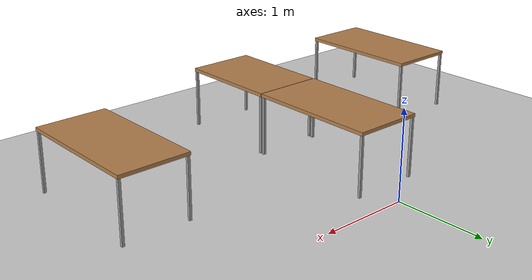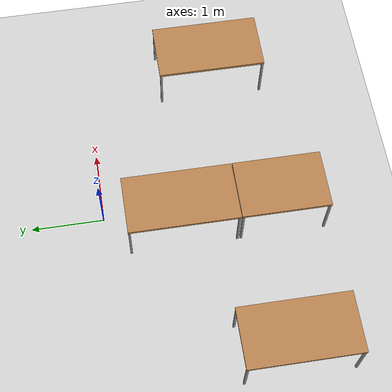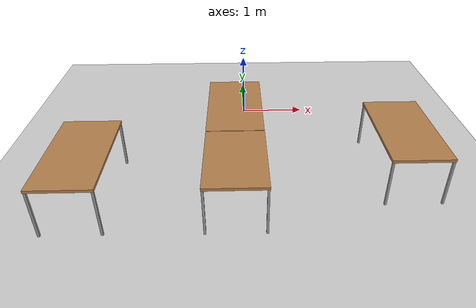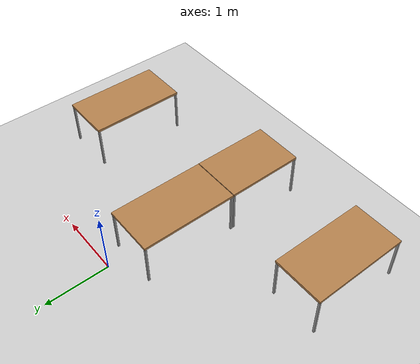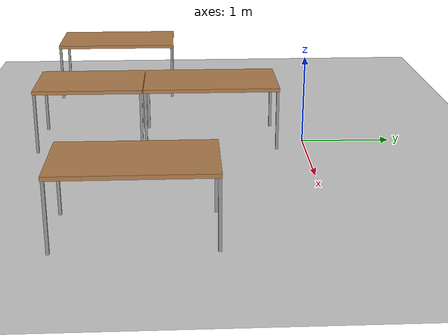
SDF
<sdf version="1.7">
 <world name="default">
  <model name="ground_plane">
   <static>1</static>
   <link name="link">
    <collision name="collision">
     <geometry><plane><normal>0 0 1</normal><size>100 100</size></plane></geometry>
     <surface>
      <contact><collide_bitmask>65535</collide_bitmask></contact>
      <friction><ode><mu>100</mu><mu2>50</mu2></ode></friction>
     </surface>
    </collision>
    <visual name="visual">
     <cast_shadows>0</cast_shadows>
     <geometry><plane><normal>0 0 1</normal><size>100 100</size></plane></geometry>
     <material>
      <script><uri>file://media/materials/scripts/gazebo.material</uri><name>Gazebo/Grey</name></script>
     </material>
    </visual>
   </link>
  </model>
  <model name="table_long">
   <link name="link">
    <inertial>
     <mass>1</mass>
     <inertia><ixx>1</ixx><ixy>0</ixy><ixz>0</ixz><iyy>1</iyy><iyz>0</iyz><izz>1</izz></inertia>
    </inertial>
    <visual name="front_left_leg">
     <pose>0.73 0.38 0.35 0 -0 0</pose>
     <geometry><box><size>0.03 0.03 0.7</size></box></geometry>
     <material>
      <script><uri>file://media/materials/scripts/gazebo.material</uri><name>Gazebo/Grey</name></script>
      <shader type="pixel"><normal_map>__default__</normal_map></shader>
      <ambient>0.3 0.3 0.3 1</ambient>
      <diffuse>0.7 0.7 0.7 1</diffuse>
      <specular>0.01 0.01 0.01 1</specular>
      <emissive>0 0 0 1</emissive>
     </material>
    </visual>
    <visual name="front_right_leg">
     <pose>0.73 -0.38 0.35 0 -0 0</pose>
     <geometry><box><size>0.03 0.03 0.7</size></box></geometry>
     <material>
      <script><uri>file://media/materials/scripts/gazebo.material</uri><name>Gazebo/Grey</name></script>
      <shader type="pixel"><normal_map>__default__</normal_map></shader>
      <ambient>0.3 0.3 0.3 1</ambient>
      <diffuse>0.7 0.7 0.7 1</diffuse>
      <specular>0.01 0.01 0.01 1</specular>
      <emissive>0 0 0 1</emissive>
     </material>
    </visual>
    <visual name="visual1">
     <pose>0 0 0.7 0 -0 0</pose>
     <geometry><box><size>1.5 0.8 0.04</size></box></geometry>
     <material>
      <script><uri>file://media/materials/scripts/gazebo.material</uri><name>Gazebo/Wood</name></script>
      <shader type="pixel"><normal_map>__default__</normal_map></shader>
      <ambient>1 1 1 1</ambient>
      <diffuse>1 1 1 1</diffuse>
      <specular>0.2 0.2 0.2 1</specular>
      <emissive>0 0 0 1</emissive>
     </material>
    </visual>
    <visual name="back_right_leg">
     <pose>-0.73 -0.38 0.35 0 -0 0</pose>
     <geometry><box><size>0.03 0.03 0.7</size></box></geometry>
     <material>
      <script><uri>file://media/materials/scripts/gazebo.material</uri><name>Gazebo/Grey</name></script>
      <shader type="pixel"><normal_map>__default__</normal_map></shader>
      <ambient>0.3 0.3 0.3 1</ambient>
      <diffuse>0.7 0.7 0.7 1</diffuse>
      <specular>0.01 0.01 0.01 1</specular>
      <emissive>0 0 0 1</emissive>
     </material>
    </visual>
    <visual name="back_left_leg">
     <pose>-0.73 0.38 0.35 0 -0 0</pose>
     <geometry><box><size>0.03 0.03 0.7</size></box></geometry>
     <material>
      <script><uri>file://media/materials/scripts/gazebo.material</uri><name>Gazebo/Grey</name></script>
      <shader type="pixel"><normal_map>__default__</normal_map></shader>
      <ambient>0.3 0.3 0.3 1</ambient>
      <diffuse>0.7 0.7 0.7 1</diffuse>
      <specular>0.01 0.01 0.01 1</specular>
      <emissive>0 0 0 1</emissive>
     </material>
    </visual>
    <collision name="front_right_leg">
     <pose>0.73 -0.38 0.35 0 -0 0</pose>
     <geometry><box><size>0.03 0.03 0.7</size></box></geometry>
     <surface>
      <friction>
       <ode><mu>1</mu><mu2>1</mu2><fdir1>0 0 0</fdir1><slip1>0</slip1><slip2>0</slip2></ode>
       <torsional>
        <coefficient>1</coefficient>
        <patch_radius>0</patch_radius>
        <surface_radius>0</surface_radius>
        <use_patch_radius>1</use_patch_radius>
        <ode><slip>0</slip></ode>
       </torsional>
      </friction>
      <bounce><restitution_coefficient>0</restitution_coefficient><threshold>1e+06</threshold></bounce>
      <contact>
       <collide_without_contact>0</collide_without_contact>
       <collide_without_contact_bitmask>1</collide_without_contact_bitmask>
       <collide_bitmask>1</collide_bitmask>
       <ode>
        <soft_cfm>0</soft_cfm>
        <soft_erp>0.2</soft_erp>
        <kp>1e+13</kp>
        <kd>1</kd>
        <max_vel>0.01</max_vel>
        <min_depth>0</min_depth>
       </ode>
       <bullet>
        <split_impulse>1</split_impulse>
        <split_impulse_penetration_threshold>-0.01</split_impulse_penetration_threshold>
        <soft_cfm>0</soft_cfm>
        <soft_erp>0.2</soft_erp>
        <kp>1e+13</kp>
        <kd>1</kd>
       </bullet>
      </contact>
     </surface>
    </collision>
    <collision name="front_left_leg">
     <pose>0.73 0.38 0.35 0 -0 0</pose>
     <geometry><box><size>0.03 0.03 0.699999</size></box></geometry>
     <surface>
      <friction>
       <ode><mu>1</mu><mu2>1</mu2><fdir1>0 0 0</fdir1><slip1>0</slip1><slip2>0</slip2></ode>
       <torsional>
        <coefficient>1</coefficient>
        <patch_radius>0</patch_radius>
        <surface_radius>0</surface_radius>
        <use_patch_radius>1</use_patch_radius>
        <ode><slip>0</slip></ode>
       </torsional>
      </friction>
      <bounce><restitution_coefficient>0</restitution_coefficient><threshold>1e+06</threshold></bounce>
      <contact>
       <collide_without_contact>0</collide_without_contact>
       <collide_without_contact_bitmask>1</collide_without_contact_bitmask>
       <collide_bitmask>1</collide_bitmask>
       <ode>
        <soft_cfm>0</soft_cfm>
        <soft_erp>0.2</soft_erp>
        <kp>1e+13</kp>
        <kd>1</kd>
        <max_vel>0.01</max_vel>
        <min_depth>0</min_depth>
       </ode>
       <bullet>
        <split_impulse>1</split_impulse>
        <split_impulse_penetration_threshold>-0.01</split_impulse_penetration_threshold>
        <soft_cfm>0</soft_cfm>
        <soft_erp>0.2</soft_erp>
        <kp>1e+13</kp>
        <kd>1</kd>
       </bullet>
      </contact>
     </surface>
    </collision>
    <collision name="back_right_leg">
     <pose>-0.73 -0.38 0.35 0 -0 0</pose>
     <geometry><box><size>0.03 0.03 0.7</size></box></geometry>
     <surface>
      <friction>
       <ode><mu>1</mu><mu2>1</mu2><fdir1>0 0 0</fdir1><slip1>0</slip1><slip2>0</slip2></ode>
       <torsional>
        <coefficient>1</coefficient>
        <patch_radius>0</patch_radius>
        <surface_radius>0</surface_radius>
        <use_patch_radius>1</use_patch_radius>
        <ode><slip>0</slip></ode>
       </torsional>
      </friction>
      <bounce><restitution_coefficient>0</restitution_coefficient><threshold>1e+06</threshold></bounce>
      <contact>
       <collide_without_contact>0</collide_without_contact>
       <collide_without_contact_bitmask>1</collide_without_contact_bitmask>
       <collide_bitmask>1</collide_bitmask>
       <ode>
        <soft_cfm>0</soft_cfm>
        <soft_erp>0.2</soft_erp>
        <kp>1e+13</kp>
        <kd>1</kd>
        <max_vel>0.01</max_vel>
        <min_depth>0</min_depth>
       </ode>
       <bullet>
        <split_impulse>1</split_impulse>
        <split_impulse_penetration_threshold>-0.01</split_impulse_penetration_threshold>
        <soft_cfm>0</soft_cfm>
        <soft_erp>0.2</soft_erp>
        <kp>1e+13</kp>
        <kd>1</kd>
       </bullet>
      </contact>
     </surface>
    </collision>
    <collision name="surface">
     <pose>0 0 0.7 0 -0 0</pose>
     <geometry><box><size>1.5 0.8 0.04</size></box></geometry>
     <surface>
      <friction>
       <ode><mu>0.6</mu><mu2>0.6</mu2><fdir1>0 0 0</fdir1><slip1>0</slip1><slip2>0</slip2></ode>
       <torsional>
        <coefficient>1</coefficient>
        <patch_radius>0</patch_radius>
        <surface_radius>0</surface_radius>
        <use_patch_radius>1</use_patch_radius>
        <ode><slip>0</slip></ode>
       </torsional>
      </friction>
      <bounce><restitution_coefficient>0</restitution_coefficient><threshold>1e+06</threshold></bounce>
      <contact>
       <collide_without_contact>0</collide_without_contact>
       <collide_without_contact_bitmask>1</collide_without_contact_bitmask>
       <collide_bitmask>1</collide_bitmask>
       <ode>
        <soft_cfm>0</soft_cfm>
        <soft_erp>0.2</soft_erp>
        <kp>1e+13</kp>
        <kd>1</kd>
        <max_vel>0.01</max_vel>
        <min_depth>0</min_depth>
       </ode>
       <bullet>
        <split_impulse>1</split_impulse>
        <split_impulse_penetration_threshold>-0.01</split_impulse_penetration_threshold>
        <soft_cfm>0</soft_cfm>
        <soft_erp>0.2</soft_erp>
        <kp>1e+13</kp>
        <kd>1</kd>
       </bullet>
      </contact>
     </surface>
    </collision>
    <collision name="back_left_leg">
     <pose>-0.73 0.38 0.35 0 -0 0</pose>
     <geometry><box><size>0.03 0.03 0.7</size></box></geometry>
     <surface>
      <friction>
       <ode><mu>1</mu><mu2>1</mu2><fdir1>0 0 0</fdir1><slip1>0</slip1><slip2>0</slip2></ode>
       <torsional>
        <coefficient>1</coefficient>
        <patch_radius>0</patch_radius>
        <surface_radius>0</surface_radius>
        <use_patch_radius>1</use_patch_radius>
        <ode><slip>0</slip></ode>
       </torsional>
      </friction>
      <bounce><restitution_coefficient>0</restitution_coefficient><threshold>1e+06</threshold></bounce>
      <contact>
       <collide_without_contact>0</collide_without_contact>
       <collide_without_contact_bitmask>1</collide_without_contact_bitmask>
       <collide_bitmask>1</collide_bitmask>
       <ode>
        <soft_cfm>0</soft_cfm>
        <soft_erp>0.2</soft_erp>
        <kp>1e+13</kp>
        <kd>1</kd>
        <max_vel>0.01</max_vel>
        <min_depth>0</min_depth>
       </ode>
       <bullet>
        <split_impulse>1</split_impulse>
        <split_impulse_penetration_threshold>-0.01</split_impulse_penetration_threshold>
        <soft_cfm>0</soft_cfm>
        <soft_erp>0.2</soft_erp>
        <kp>1e+13</kp>
        <kd>1</kd>
       </bullet>
      </contact>
     </surface>
    </collision>
   </link>
   <static>1</static>
   <pose>-2.14635 -2.2433 0 0 -0 1.57</pose>
  </model>
  <model name="table_long_clone">
   <link name="link">
    <inertial>
     <mass>1</mass>
     <inertia><ixx>1</ixx><ixy>0</ixy><ixz>0</ixz><iyy>1</iyy><iyz>0</iyz><izz>1</izz></inertia>
    </inertial>
    <visual name="front_left_leg">
     <pose>0.73 0.38 0.35 0 -0 0</pose>
     <geometry><box><size>0.03 0.03 0.7</size></box></geometry>
     <material>
      <script><uri>file://media/materials/scripts/gazebo.material</uri><name>Gazebo/Grey</name></script>
      <shader type="pixel"><normal_map>__default__</normal_map></shader>
      <ambient>0.3 0.3 0.3 1</ambient>
      <diffuse>0.7 0.7 0.7 1</diffuse>
      <specular>0.01 0.01 0.01 1</specular>
      <emissive>0 0 0 1</emissive>
     </material>
    </visual>
    <visual name="front_right_leg">
     <pose>0.73 -0.38 0.35 0 -0 0</pose>
     <geometry><box><size>0.03 0.03 0.7</size></box></geometry>
     <material>
      <script><uri>file://media/materials/scripts/gazebo.material</uri><name>Gazebo/Grey</name></script>
      <shader type="pixel"><normal_map>__default__</normal_map></shader>
      <ambient>0.3 0.3 0.3 1</ambient>
      <diffuse>0.7 0.7 0.7 1</diffuse>
      <specular>0.01 0.01 0.01 1</specular>
      <emissive>0 0 0 1</emissive>
     </material>
    </visual>
    <visual name="visual1">
     <pose>0 0 0.7 0 -0 0</pose>
     <geometry><box><size>1.5 0.8 0.04</size></box></geometry>
     <material>
      <script><uri>file://media/materials/scripts/gazebo.material</uri><name>Gazebo/Wood</name></script>
      <shader type="pixel"><normal_map>__default__</normal_map></shader>
      <ambient>1 1 1 1</ambient>
      <diffuse>1 1 1 1</diffuse>
      <specular>0.2 0.2 0.2 1</specular>
      <emissive>0 0 0 1</emissive>
     </material>
    </visual>
    <visual name="back_right_leg">
     <pose>-0.73 -0.38 0.35 0 -0 0</pose>
     <geometry><box><size>0.03 0.03 0.7</size></box></geometry>
     <material>
      <script><uri>file://media/materials/scripts/gazebo.material</uri><name>Gazebo/Grey</name></script>
      <shader type="pixel"><normal_map>__default__</normal_map></shader>
      <ambient>0.3 0.3 0.3 1</ambient>
      <diffuse>0.7 0.7 0.7 1</diffuse>
      <specular>0.01 0.01 0.01 1</specular>
      <emissive>0 0 0 1</emissive>
     </material>
    </visual>
    <visual name="back_left_leg">
     <pose>-0.73 0.38 0.35 0 -0 0</pose>
     <geometry><box><size>0.03 0.03 0.7</size></box></geometry>
     <material>
      <script><uri>file://media/materials/scripts/gazebo.material</uri><name>Gazebo/Grey</name></script>
      <shader type="pixel"><normal_map>__default__</normal_map></shader>
      <ambient>0.3 0.3 0.3 1</ambient>
      <diffuse>0.7 0.7 0.7 1</diffuse>
      <specular>0.01 0.01 0.01 1</specular>
      <emissive>0 0 0 1</emissive>
     </material>
    </visual>
    <collision name="front_right_leg">
     <pose>0.73 -0.38 0.35 0 -0 0</pose>
     <geometry><box><size>0.03 0.03 0.7</size></box></geometry>
     <surface>
      <friction>
       <ode><mu>1</mu><mu2>1</mu2><fdir1>0 0 0</fdir1><slip1>0</slip1><slip2>0</slip2></ode>
       <torsional>
        <coefficient>1</coefficient>
        <patch_radius>0</patch_radius>
        <surface_radius>0</surface_radius>
        <use_patch_radius>1</use_patch_radius>
        <ode><slip>0</slip></ode>
       </torsional>
      </friction>
      <bounce><restitution_coefficient>0</restitution_coefficient><threshold>1e+06</threshold></bounce>
      <contact>
       <collide_without_contact>0</collide_without_contact>
       <collide_without_contact_bitmask>1</collide_without_contact_bitmask>
       <collide_bitmask>1</collide_bitmask>
       <ode>
        <soft_cfm>0</soft_cfm>
        <soft_erp>0.2</soft_erp>
        <kp>1e+13</kp>
        <kd>1</kd>
        <max_vel>0.01</max_vel>
        <min_depth>0</min_depth>
       </ode>
       <bullet>
        <split_impulse>1</split_impulse>
        <split_impulse_penetration_threshold>-0.01</split_impulse_penetration_threshold>
        <soft_cfm>0</soft_cfm>
        <soft_erp>0.2</soft_erp>
        <kp>1e+13</kp>
        <kd>1</kd>
       </bullet>
      </contact>
     </surface>
    </collision>
    <collision name="front_left_leg">
     <pose>0.73 0.38 0.35 0 -0 0</pose>
     <geometry><box><size>0.03 0.03 0.699999</size></box></geometry>
     <surface>
      <friction>
       <ode><mu>1</mu><mu2>1</mu2><fdir1>0 0 0</fdir1><slip1>0</slip1><slip2>0</slip2></ode>
       <torsional>
        <coefficient>1</coefficient>
        <patch_radius>0</patch_radius>
        <surface_radius>0</surface_radius>
        <use_patch_radius>1</use_patch_radius>
        <ode><slip>0</slip></ode>
       </torsional>
      </friction>
      <bounce><restitution_coefficient>0</restitution_coefficient><threshold>1e+06</threshold></bounce>
      <contact>
       <collide_without_contact>0</collide_without_contact>
       <collide_without_contact_bitmask>1</collide_without_contact_bitmask>
       <collide_bitmask>1</collide_bitmask>
       <ode>
        <soft_cfm>0</soft_cfm>
        <soft_erp>0.2</soft_erp>
        <kp>1e+13</kp>
        <kd>1</kd>
        <max_vel>0.01</max_vel>
        <min_depth>0</min_depth>
       </ode>
       <bullet>
        <split_impulse>1</split_impulse>
        <split_impulse_penetration_threshold>-0.01</split_impulse_penetration_threshold>
        <soft_cfm>0</soft_cfm>
        <soft_erp>0.2</soft_erp>
        <kp>1e+13</kp>
        <kd>1</kd>
       </bullet>
      </contact>
     </surface>
    </collision>
    <collision name="back_right_leg">
     <pose>-0.73 -0.38 0.35 0 -0 0</pose>
     <geometry><box><size>0.03 0.03 0.7</size></box></geometry>
     <surface>
      <friction>
       <ode><mu>1</mu><mu2>1</mu2><fdir1>0 0 0</fdir1><slip1>0</slip1><slip2>0</slip2></ode>
       <torsional>
        <coefficient>1</coefficient>
        <patch_radius>0</patch_radius>
        <surface_radius>0</surface_radius>
        <use_patch_radius>1</use_patch_radius>
        <ode><slip>0</slip></ode>
       </torsional>
      </friction>
      <bounce><restitution_coefficient>0</restitution_coefficient><threshold>1e+06</threshold></bounce>
      <contact>
       <collide_without_contact>0</collide_without_contact>
       <collide_without_contact_bitmask>1</collide_without_contact_bitmask>
       <collide_bitmask>1</collide_bitmask>
       <ode>
        <soft_cfm>0</soft_cfm>
        <soft_erp>0.2</soft_erp>
        <kp>1e+13</kp>
        <kd>1</kd>
        <max_vel>0.01</max_vel>
        <min_depth>0</min_depth>
       </ode>
       <bullet>
        <split_impulse>1</split_impulse>
        <split_impulse_penetration_threshold>-0.01</split_impulse_penetration_threshold>
        <soft_cfm>0</soft_cfm>
        <soft_erp>0.2</soft_erp>
        <kp>1e+13</kp>
        <kd>1</kd>
       </bullet>
      </contact>
     </surface>
    </collision>
    <collision name="surface">
     <pose>0 0 0.7 0 -0 0</pose>
     <geometry><box><size>1.5 0.8 0.04</size></box></geometry>
     <surface>
      <friction>
       <ode><mu>0.6</mu><mu2>0.6</mu2><fdir1>0 0 0</fdir1><slip1>0</slip1><slip2>0</slip2></ode>
       <torsional>
        <coefficient>1</coefficient>
        <patch_radius>0</patch_radius>
        <surface_radius>0</surface_radius>
        <use_patch_radius>1</use_patch_radius>
        <ode><slip>0</slip></ode>
       </torsional>
      </friction>
      <bounce><restitution_coefficient>0</restitution_coefficient><threshold>1e+06</threshold></bounce>
      <contact>
       <collide_without_contact>0</collide_without_contact>
       <collide_without_contact_bitmask>1</collide_without_contact_bitmask>
       <collide_bitmask>1</collide_bitmask>
       <ode>
        <soft_cfm>0</soft_cfm>
        <soft_erp>0.2</soft_erp>
        <kp>1e+13</kp>
        <kd>1</kd>
        <max_vel>0.01</max_vel>
        <min_depth>0</min_depth>
       </ode>
       <bullet>
        <split_impulse>1</split_impulse>
        <split_impulse_penetration_threshold>-0.01</split_impulse_penetration_threshold>
        <soft_cfm>0</soft_cfm>
        <soft_erp>0.2</soft_erp>
        <kp>1e+13</kp>
        <kd>1</kd>
       </bullet>
      </contact>
     </surface>
    </collision>
    <collision name="back_left_leg">
     <pose>-0.73 0.38 0.35 0 -0 0</pose>
     <geometry><box><size>0.03 0.03 0.7</size></box></geometry>
     <surface>
      <friction>
       <ode><mu>1</mu><mu2>1</mu2><fdir1>0 0 0</fdir1><slip1>0</slip1><slip2>0</slip2></ode>
       <torsional>
        <coefficient>1</coefficient>
        <patch_radius>0</patch_radius>
        <surface_radius>0</surface_radius>
        <use_patch_radius>1</use_patch_radius>
        <ode><slip>0</slip></ode>
       </torsional>
      </friction>
      <bounce><restitution_coefficient>0</restitution_coefficient><threshold>1e+06</threshold></bounce>
      <contact>
       <collide_without_contact>0</collide_without_contact>
       <collide_without_contact_bitmask>1</collide_without_contact_bitmask>
       <collide_bitmask>1</collide_bitmask>
       <ode>
        <soft_cfm>0</soft_cfm>
        <soft_erp>0.2</soft_erp>
        <kp>1e+13</kp>
        <kd>1</kd>
        <max_vel>0.01</max_vel>
        <min_depth>0</min_depth>
       </ode>
       <bullet>
        <split_impulse>1</split_impulse>
        <split_impulse_penetration_threshold>-0.01</split_impulse_penetration_threshold>
        <soft_cfm>0</soft_cfm>
        <soft_erp>0.2</soft_erp>
        <kp>1e+13</kp>
        <kd>1</kd>
       </bullet>
      </contact>
     </surface>
    </collision>
   </link>
   <static>1</static>
   <pose>-0.152428 -1.05143 0 0 -0 1.57</pose>
  </model>
  <model name="table_short_clone">
   <link name="link">
    <inertial>
     <mass>1</mass>
     <inertia><ixx>1</ixx><ixy>0</ixy><ixz>0</ixz><iyy>1</iyy><iyz>0</iyz><izz>1</izz></inertia>
    </inertial>
    <visual name="front_right_leg">
     <pose>0.58 -0.38 0.35 0 -0 0</pose>
     <geometry><box><size>0.03 0.03 0.7</size></box></geometry>
     <material>
      <script><uri>file://media/materials/scripts/gazebo.material</uri><name>Gazebo/Grey</name></script>
      <shader type="pixel"><normal_map>__default__</normal_map></shader>
      <ambient>0.3 0.3 0.3 1</ambient>
      <diffuse>0.7 0.7 0.7 1</diffuse>
      <specular>0.01 0.01 0.01 1</specular>
      <emissive>0 0 0 1</emissive>
     </material>
    </visual>
    <visual name="back_left_leg">
     <pose>-0.58 0.38 0.35 0 -0 0</pose>
     <geometry><box><size>0.03 0.03 0.7</size></box></geometry>
     <material>
      <script><uri>file://media/materials/scripts/gazebo.material</uri><name>Gazebo/Grey</name></script>
      <shader type="pixel"><normal_map>__default__</normal_map></shader>
      <ambient>0.3 0.3 0.3 1</ambient>
      <diffuse>0.7 0.7 0.7 1</diffuse>
      <specular>0.01 0.01 0.01 1</specular>
      <emissive>0 0 0 1</emissive>
     </material>
    </visual>
    <visual name="front_left_leg">
     <pose>0.58 0.38 0.35 0 -0 0</pose>
     <geometry><box><size>0.03 0.03 0.7</size></box></geometry>
     <material>
      <script><uri>file://media/materials/scripts/gazebo.material</uri><name>Gazebo/Grey</name></script>
      <shader type="pixel"><normal_map>__default__</normal_map></shader>
      <ambient>0.3 0.3 0.3 1</ambient>
      <diffuse>0.7 0.7 0.7 1</diffuse>
      <specular>0.01 0.01 0.01 1</specular>
      <emissive>0 0 0 1</emissive>
     </material>
    </visual>
    <visual name="back_right_leg">
     <pose>-0.58 -0.38 0.35 0 -0 0</pose>
     <geometry><box><size>0.03 0.03 0.7</size></box></geometry>
     <material>
      <script><uri>file://media/materials/scripts/gazebo.material</uri><name>Gazebo/Grey</name></script>
      <shader type="pixel"><normal_map>__default__</normal_map></shader>
      <ambient>0.3 0.3 0.3 1</ambient>
      <diffuse>0.7 0.7 0.7 1</diffuse>
      <specular>0.01 0.01 0.01 1</specular>
      <emissive>0 0 0 1</emissive>
     </material>
    </visual>
    <visual name="visual1">
     <pose>0 0 0.7 0 -0 0</pose>
     <geometry><box><size>1.2 0.8 0.04</size></box></geometry>
     <material>
      <script><uri>file://media/materials/scripts/gazebo.material</uri><name>Gazebo/Wood</name></script>
      <shader type="pixel"><normal_map>__default__</normal_map></shader>
      <ambient>1 1 1 1</ambient>
      <diffuse>1 1 1 1</diffuse>
      <specular>0.2 0.2 0.2 1</specular>
      <emissive>0 0 0 1</emissive>
     </material>
    </visual>
    <collision name="front_right_leg">
     <pose>0.58 -0.38 0.35 0 -0 0</pose>
     <geometry><box><size>0.03 0.03 0.7</size></box></geometry>
     <surface>
      <friction>
       <ode><mu>1</mu><mu2>1</mu2><fdir1>0 0 0</fdir1><slip1>0</slip1><slip2>0</slip2></ode>
       <torsional>
        <coefficient>1</coefficient>
        <patch_radius>0</patch_radius>
        <surface_radius>0</surface_radius>
        <use_patch_radius>1</use_patch_radius>
        <ode><slip>0</slip></ode>
       </torsional>
      </friction>
      <bounce><restitution_coefficient>0</restitution_coefficient><threshold>1e+06</threshold></bounce>
      <contact>
       <collide_without_contact>0</collide_without_contact>
       <collide_without_contact_bitmask>1</collide_without_contact_bitmask>
       <collide_bitmask>1</collide_bitmask>
       <ode>
        <soft_cfm>0</soft_cfm>
        <soft_erp>0.2</soft_erp>
        <kp>1e+13</kp>
        <kd>1</kd>
        <max_vel>0.01</max_vel>
        <min_depth>0</min_depth>
       </ode>
       <bullet>
        <split_impulse>1</split_impulse>
        <split_impulse_penetration_threshold>-0.01</split_impulse_penetration_threshold>
        <soft_cfm>0</soft_cfm>
        <soft_erp>0.2</soft_erp>
        <kp>1e+13</kp>
        <kd>1</kd>
       </bullet>
      </contact>
     </surface>
    </collision>
    <collision name="back_left_leg">
     <pose>-0.58 0.38 0.35 0 -0 0</pose>
     <geometry><box><size>0.03 0.03 0.7</size></box></geometry>
     <surface>
      <friction>
       <ode><mu>1</mu><mu2>1</mu2><fdir1>0 0 0</fdir1><slip1>0</slip1><slip2>0</slip2></ode>
       <torsional>
        <coefficient>1</coefficient>
        <patch_radius>0</patch_radius>
        <surface_radius>0</surface_radius>
        <use_patch_radius>1</use_patch_radius>
        <ode><slip>0</slip></ode>
       </torsional>
      </friction>
      <bounce><restitution_coefficient>0</restitution_coefficient><threshold>1e+06</threshold></bounce>
      <contact>
       <collide_without_contact>0</collide_without_contact>
       <collide_without_contact_bitmask>1</collide_without_contact_bitmask>
       <collide_bitmask>1</collide_bitmask>
       <ode>
        <soft_cfm>0</soft_cfm>
        <soft_erp>0.2</soft_erp>
        <kp>1e+13</kp>
        <kd>1</kd>
        <max_vel>0.01</max_vel>
        <min_depth>0</min_depth>
       </ode>
       <bullet>
        <split_impulse>1</split_impulse>
        <split_impulse_penetration_threshold>-0.01</split_impulse_penetration_threshold>
        <soft_cfm>0</soft_cfm>
        <soft_erp>0.2</soft_erp>
        <kp>1e+13</kp>
        <kd>1</kd>
       </bullet>
      </contact>
     </surface>
    </collision>
    <collision name="back_right_leg">
     <pose>-0.58 -0.38 0.35 0 -0 0</pose>
     <geometry><box><size>0.03 0.03 0.7</size></box></geometry>
     <surface>
      <friction>
       <ode><mu>1</mu><mu2>1</mu2><fdir1>0 0 0</fdir1><slip1>0</slip1><slip2>0</slip2></ode>
       <torsional>
        <coefficient>1</coefficient>
        <patch_radius>0</patch_radius>
        <surface_radius>0</surface_radius>
        <use_patch_radius>1</use_patch_radius>
        <ode><slip>0</slip></ode>
       </torsional>
      </friction>
      <bounce><restitution_coefficient>0</restitution_coefficient><threshold>1e+06</threshold></bounce>
      <contact>
       <collide_without_contact>0</collide_without_contact>
       <collide_without_contact_bitmask>1</collide_without_contact_bitmask>
       <collide_bitmask>1</collide_bitmask>
       <ode>
        <soft_cfm>0</soft_cfm>
        <soft_erp>0.2</soft_erp>
        <kp>1e+13</kp>
        <kd>1</kd>
        <max_vel>0.01</max_vel>
        <min_depth>0</min_depth>
       </ode>
       <bullet>
        <split_impulse>1</split_impulse>
        <split_impulse_penetration_threshold>-0.01</split_impulse_penetration_threshold>
        <soft_cfm>0</soft_cfm>
        <soft_erp>0.2</soft_erp>
        <kp>1e+13</kp>
        <kd>1</kd>
       </bullet>
      </contact>
     </surface>
    </collision>
    <collision name="surface">
     <pose>0 0 0.7 0 -0 0</pose>
     <geometry><box><size>1.2 0.8 0.04</size></box></geometry>
     <surface>
      <friction>
       <ode><mu>0.6</mu><mu2>0.6</mu2><fdir1>0 0 0</fdir1><slip1>0</slip1><slip2>0</slip2></ode>
       <torsional>
        <coefficient>1</coefficient>
        <patch_radius>0</patch_radius>
        <surface_radius>0</surface_radius>
        <use_patch_radius>1</use_patch_radius>
        <ode><slip>0</slip></ode>
       </torsional>
      </friction>
      <bounce><restitution_coefficient>0</restitution_coefficient><threshold>1e+06</threshold></bounce>
      <contact>
       <collide_without_contact>0</collide_without_contact>
       <collide_without_contact_bitmask>1</collide_without_contact_bitmask>
       <collide_bitmask>1</collide_bitmask>
       <ode>
        <soft_cfm>0</soft_cfm>
        <soft_erp>0.2</soft_erp>
        <kp>1e+13</kp>
        <kd>1</kd>
        <max_vel>0.01</max_vel>
        <min_depth>0</min_depth>
       </ode>
       <bullet>
        <split_impulse>1</split_impulse>
        <split_impulse_penetration_threshold>-0.01</split_impulse_penetration_threshold>
        <soft_cfm>0</soft_cfm>
        <soft_erp>0.2</soft_erp>
        <kp>1e+13</kp>
        <kd>1</kd>
       </bullet>
      </contact>
     </surface>
    </collision>
    <collision name="front_left_leg">
     <pose>0.58 0.38 0.35 0 -0 0</pose>
     <geometry><box><size>0.03 0.03 0.699999</size></box></geometry>
     <surface>
      <friction>
       <ode><mu>1</mu><mu2>1</mu2><fdir1>0 0 0</fdir1><slip1>0</slip1><slip2>0</slip2></ode>
       <torsional>
        <coefficient>1</coefficient>
        <patch_radius>0</patch_radius>
        <surface_radius>0</surface_radius>
        <use_patch_radius>1</use_patch_radius>
        <ode><slip>0</slip></ode>
       </torsional>
      </friction>
      <bounce><restitution_coefficient>0</restitution_coefficient><threshold>1e+06</threshold></bounce>
      <contact>
       <collide_without_contact>0</collide_without_contact>
       <collide_without_contact_bitmask>1</collide_without_contact_bitmask>
       <collide_bitmask>1</collide_bitmask>
       <ode>
        <soft_cfm>0</soft_cfm>
        <soft_erp>0.2</soft_erp>
        <kp>1e+13</kp>
        <kd>1</kd>
        <max_vel>0.01</max_vel>
        <min_depth>0</min_depth>
       </ode>
       <bullet>
        <split_impulse>1</split_impulse>
        <split_impulse_penetration_threshold>-0.01</split_impulse_penetration_threshold>
        <soft_cfm>0</soft_cfm>
        <soft_erp>0.2</soft_erp>
        <kp>1e+13</kp>
        <kd>1</kd>
       </bullet>
      </contact>
     </surface>
    </collision>
   </link>
   <static>1</static>
   <pose>-0.151283 -2.41021 0 0 -0 1.57</pose>
  </model>
  <model name="table_long_clone_clone">
   <link name="link">
    <inertial>
     <mass>1</mass>
     <inertia><ixx>1</ixx><ixy>0</ixy><ixz>0</ixz><iyy>1</iyy><iyz>0</iyz><izz>1</izz></inertia>
    </inertial>
    <visual name="front_left_leg">
     <pose>0.73 0.38 0.35 0 -0 0</pose>
     <geometry><box><size>0.03 0.03 0.7</size></box></geometry>
     <material>
      <script><uri>file://media/materials/scripts/gazebo.material</uri><name>Gazebo/Grey</name></script>
      <shader type="pixel"><normal_map>__default__</normal_map></shader>
      <ambient>0.3 0.3 0.3 1</ambient>
      <diffuse>0.7 0.7 0.7 1</diffuse>
      <specular>0.01 0.01 0.01 1</specular>
      <emissive>0 0 0 1</emissive>
     </material>
    </visual>
    <visual name="front_right_leg">
     <pose>0.73 -0.38 0.35 0 -0 0</pose>
     <geometry><box><size>0.03 0.03 0.7</size></box></geometry>
     <material>
      <script><uri>file://media/materials/scripts/gazebo.material</uri><name>Gazebo/Grey</name></script>
      <shader type="pixel"><normal_map>__default__</normal_map></shader>
      <ambient>0.3 0.3 0.3 1</ambient>
      <diffuse>0.7 0.7 0.7 1</diffuse>
      <specular>0.01 0.01 0.01 1</specular>
      <emissive>0 0 0 1</emissive>
     </material>
    </visual>
    <visual name="visual1">
     <pose>0 0 0.7 0 -0 0</pose>
     <geometry><box><size>1.5 0.8 0.04</size></box></geometry>
     <material>
      <script><uri>file://media/materials/scripts/gazebo.material</uri><name>Gazebo/Wood</name></script>
      <shader type="pixel"><normal_map>__default__</normal_map></shader>
      <ambient>1 1 1 1</ambient>
      <diffuse>1 1 1 1</diffuse>
      <specular>0.2 0.2 0.2 1</specular>
      <emissive>0 0 0 1</emissive>
     </material>
    </visual>
    <visual name="back_right_leg">
     <pose>-0.73 -0.38 0.35 0 -0 0</pose>
     <geometry><box><size>0.03 0.03 0.7</size></box></geometry>
     <material>
      <script><uri>file://media/materials/scripts/gazebo.material</uri><name>Gazebo/Grey</name></script>
      <shader type="pixel"><normal_map>__default__</normal_map></shader>
      <ambient>0.3 0.3 0.3 1</ambient>
      <diffuse>0.7 0.7 0.7 1</diffuse>
      <specular>0.01 0.01 0.01 1</specular>
      <emissive>0 0 0 1</emissive>
     </material>
    </visual>
    <visual name="back_left_leg">
     <pose>-0.73 0.38 0.35 0 -0 0</pose>
     <geometry><box><size>0.03 0.03 0.7</size></box></geometry>
     <material>
      <script><uri>file://media/materials/scripts/gazebo.material</uri><name>Gazebo/Grey</name></script>
      <shader type="pixel"><normal_map>__default__</normal_map></shader>
      <ambient>0.3 0.3 0.3 1</ambient>
      <diffuse>0.7 0.7 0.7 1</diffuse>
      <specular>0.01 0.01 0.01 1</specular>
      <emissive>0 0 0 1</emissive>
     </material>
    </visual>
    <collision name="front_right_leg">
     <pose>0.73 -0.38 0.35 0 -0 0</pose>
     <geometry><box><size>0.03 0.03 0.7</size></box></geometry>
     <surface>
      <friction>
       <ode><mu>1</mu><mu2>1</mu2><fdir1>0 0 0</fdir1><slip1>0</slip1><slip2>0</slip2></ode>
       <torsional>
        <coefficient>1</coefficient>
        <patch_radius>0</patch_radius>
        <surface_radius>0</surface_radius>
        <use_patch_radius>1</use_patch_radius>
        <ode><slip>0</slip></ode>
       </torsional>
      </friction>
      <bounce><restitution_coefficient>0</restitution_coefficient><threshold>1e+06</threshold></bounce>
      <contact>
       <collide_without_contact>0</collide_without_contact>
       <collide_without_contact_bitmask>1</collide_without_contact_bitmask>
       <collide_bitmask>1</collide_bitmask>
       <ode>
        <soft_cfm>0</soft_cfm>
        <soft_erp>0.2</soft_erp>
        <kp>1e+13</kp>
        <kd>1</kd>
        <max_vel>0.01</max_vel>
        <min_depth>0</min_depth>
       </ode>
       <bullet>
        <split_impulse>1</split_impulse>
        <split_impulse_penetration_threshold>-0.01</split_impulse_penetration_threshold>
        <soft_cfm>0</soft_cfm>
        <soft_erp>0.2</soft_erp>
        <kp>1e+13</kp>
        <kd>1</kd>
       </bullet>
      </contact>
     </surface>
    </collision>
    <collision name="front_left_leg">
     <pose>0.73 0.38 0.35 0 -0 0</pose>
     <geometry><box><size>0.03 0.03 0.699999</size></box></geometry>
     <surface>
      <friction>
       <ode><mu>1</mu><mu2>1</mu2><fdir1>0 0 0</fdir1><slip1>0</slip1><slip2>0</slip2></ode>
       <torsional>
        <coefficient>1</coefficient>
        <patch_radius>0</patch_radius>
        <surface_radius>0</surface_radius>
        <use_patch_radius>1</use_patch_radius>
        <ode><slip>0</slip></ode>
       </torsional>
      </friction>
      <bounce><restitution_coefficient>0</restitution_coefficient><threshold>1e+06</threshold></bounce>
      <contact>
       <collide_without_contact>0</collide_without_contact>
       <collide_without_contact_bitmask>1</collide_without_contact_bitmask>
       <collide_bitmask>1</collide_bitmask>
       <ode>
        <soft_cfm>0</soft_cfm>
        <soft_erp>0.2</soft_erp>
        <kp>1e+13</kp>
        <kd>1</kd>
        <max_vel>0.01</max_vel>
        <min_depth>0</min_depth>
       </ode>
       <bullet>
        <split_impulse>1</split_impulse>
        <split_impulse_penetration_threshold>-0.01</split_impulse_penetration_threshold>
        <soft_cfm>0</soft_cfm>
        <soft_erp>0.2</soft_erp>
        <kp>1e+13</kp>
        <kd>1</kd>
       </bullet>
      </contact>
     </surface>
    </collision>
    <collision name="back_right_leg">
     <pose>-0.73 -0.38 0.35 0 -0 0</pose>
     <geometry><box><size>0.03 0.03 0.7</size></box></geometry>
     <surface>
      <friction>
       <ode><mu>1</mu><mu2>1</mu2><fdir1>0 0 0</fdir1><slip1>0</slip1><slip2>0</slip2></ode>
       <torsional>
        <coefficient>1</coefficient>
        <patch_radius>0</patch_radius>
        <surface_radius>0</surface_radius>
        <use_patch_radius>1</use_patch_radius>
        <ode><slip>0</slip></ode>
       </torsional>
      </friction>
      <bounce><restitution_coefficient>0</restitution_coefficient><threshold>1e+06</threshold></bounce>
      <contact>
       <collide_without_contact>0</collide_without_contact>
       <collide_without_contact_bitmask>1</collide_without_contact_bitmask>
       <collide_bitmask>1</collide_bitmask>
       <ode>
        <soft_cfm>0</soft_cfm>
        <soft_erp>0.2</soft_erp>
        <kp>1e+13</kp>
        <kd>1</kd>
        <max_vel>0.01</max_vel>
        <min_depth>0</min_depth>
       </ode>
       <bullet>
        <split_impulse>1</split_impulse>
        <split_impulse_penetration_threshold>-0.01</split_impulse_penetration_threshold>
        <soft_cfm>0</soft_cfm>
        <soft_erp>0.2</soft_erp>
        <kp>1e+13</kp>
        <kd>1</kd>
       </bullet>
      </contact>
     </surface>
    </collision>
    <collision name="surface">
     <pose>0 0 0.7 0 -0 0</pose>
     <geometry><box><size>1.5 0.8 0.04</size></box></geometry>
     <surface>
      <friction>
       <ode><mu>0.6</mu><mu2>0.6</mu2><fdir1>0 0 0</fdir1><slip1>0</slip1><slip2>0</slip2></ode>
       <torsional>
        <coefficient>1</coefficient>
        <patch_radius>0</patch_radius>
        <surface_radius>0</surface_radius>
        <use_patch_radius>1</use_patch_radius>
        <ode><slip>0</slip></ode>
       </torsional>
      </friction>
      <bounce><restitution_coefficient>0</restitution_coefficient><threshold>1e+06</threshold></bounce>
      <contact>
       <collide_without_contact>0</collide_without_contact>
       <collide_without_contact_bitmask>1</collide_without_contact_bitmask>
       <collide_bitmask>1</collide_bitmask>
       <ode>
        <soft_cfm>0</soft_cfm>
        <soft_erp>0.2</soft_erp>
        <kp>1e+13</kp>
        <kd>1</kd>
        <max_vel>0.01</max_vel>
        <min_depth>0</min_depth>
       </ode>
       <bullet>
        <split_impulse>1</split_impulse>
        <split_impulse_penetration_threshold>-0.01</split_impulse_penetration_threshold>
        <soft_cfm>0</soft_cfm>
        <soft_erp>0.2</soft_erp>
        <kp>1e+13</kp>
        <kd>1</kd>
       </bullet>
      </contact>
     </surface>
    </collision>
    <collision name="back_left_leg">
     <pose>-0.73 0.38 0.35 0 -0 0</pose>
     <geometry><box><size>0.03 0.03 0.7</size></box></geometry>
     <surface>
      <friction>
       <ode><mu>1</mu><mu2>1</mu2><fdir1>0 0 0</fdir1><slip1>0</slip1><slip2>0</slip2></ode>
       <torsional>
        <coefficient>1</coefficient>
        <patch_radius>0</patch_radius>
        <surface_radius>0</surface_radius>
        <use_patch_radius>1</use_patch_radius>
        <ode><slip>0</slip></ode>
       </torsional>
      </friction>
      <bounce><restitution_coefficient>0</restitution_coefficient><threshold>1e+06</threshold></bounce>
      <contact>
       <collide_without_contact>0</collide_without_contact>
       <collide_without_contact_bitmask>1</collide_without_contact_bitmask>
       <collide_bitmask>1</collide_bitmask>
       <ode>
        <soft_cfm>0</soft_cfm>
        <soft_erp>0.2</soft_erp>
        <kp>1e+13</kp>
        <kd>1</kd>
        <max_vel>0.01</max_vel>
        <min_depth>0</min_depth>
       </ode>
       <bullet>
        <split_impulse>1</split_impulse>
        <split_impulse_penetration_threshold>-0.01</split_impulse_penetration_threshold>
        <soft_cfm>0</soft_cfm>
        <soft_erp>0.2</soft_erp>
        <kp>1e+13</kp>
        <kd>1</kd>
       </bullet>
      </contact>
     </surface>
    </collision>
   </link>
   <static>1</static>
   <pose>2.1803 -1.7978 0 0 -0 1.57</pose>
  </model>
 </world>
</sdf>
